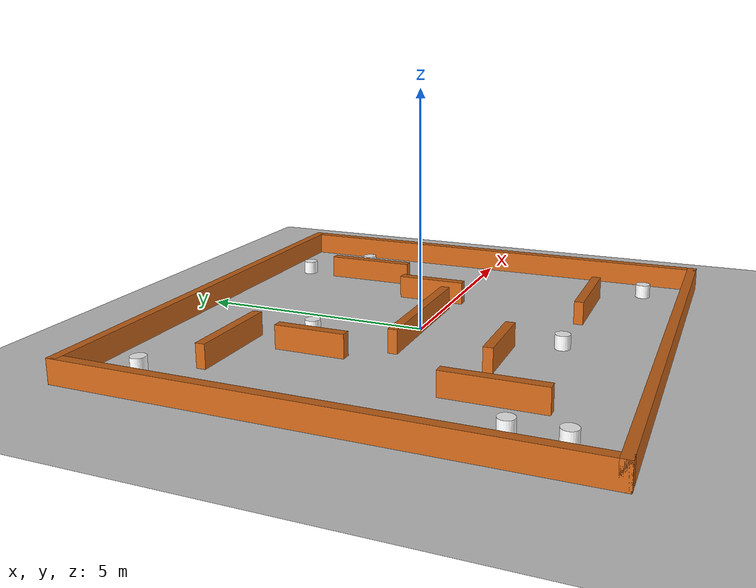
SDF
<?xml version="1.0"?>
<sdf version="1.6">
  <world name="dynamic_complex">

    <physics type="ode">
      <max_step_size>0.001</max_step_size>
      <real_time_factor>1</real_time_factor>
      <real_time_update_rate>1000</real_time_update_rate>
      <gravity>0 0 -9.8</gravity>
    </physics>

    <include><uri>model://ground_plane</uri></include>
    <include><uri>model://sun</uri></include>

    <!-- Outer walls (x, y = +-5) and internal walls -->

    <model name="wall_north">
      <static>true</static>
      <pose>0 5 0.25 0 0 0</pose>
      <link name="link">
        <collision name="collision"><geometry><box><size>10.2 0.2 0.5</size></box></geometry></collision>
        <visual name="visual"><geometry><box><size>10.2 0.2 0.5</size></box></geometry>
          <material><ambient>0.8 0.4 0.1 1</ambient><diffuse>0.8 0.4 0.1 1</diffuse></material>
        </visual>
      </link>
    </model>

    <model name="wall_south">
      <static>true</static>
      <pose>0 -5 0.25 0 0 0</pose>
      <link name="link">
        <collision name="collision"><geometry><box><size>10.2 0.2 0.5</size></box></geometry></collision>
        <visual name="visual"><geometry><box><size>10.2 0.2 0.5</size></box></geometry>
          <material><ambient>0.8 0.4 0.1 1</ambient><diffuse>0.8 0.4 0.1 1</diffuse></material>
        </visual>
      </link>
    </model>

    <model name="wall_east">
      <static>true</static>
      <pose>5 0 0.25 0 0 0</pose>
      <link name="link">
        <collision name="collision"><geometry><box><size>0.2 10.2 0.5</size></box></geometry></collision>
        <visual name="visual"><geometry><box><size>0.2 10.2 0.5</size></box></geometry>
          <material><ambient>0.8 0.4 0.1 1</ambient><diffuse>0.8 0.4 0.1 1</diffuse></material>
        </visual>
      </link>
    </model>

    <model name="wall_west">
      <static>true</static>
      <pose>-5 0 0.25 0 0 0</pose>
      <link name="link">
        <collision name="collision"><geometry><box><size>0.2 10.2 0.5</size></box></geometry></collision>
        <visual name="visual"><geometry><box><size>0.2 10.2 0.5</size></box></geometry>
          <material><ambient>0.8 0.4 0.1 1</ambient><diffuse>0.8 0.4 0.1 1</diffuse></material>
        </visual>
      </link>
    </model>

    <model name="internal_wall_1">
      <static>true</static>
      <pose>-2.5 3.0 0.25 0 0 0</pose>
      <link name="link">
        <collision name="collision"><geometry><box><size>2.0 0.2 0.5</size></box></geometry></collision>
        <visual name="visual"><geometry><box><size>2.0 0.2 0.5</size></box></geometry>
          <material><ambient>0.8 0.4 0.1 1</ambient><diffuse>0.8 0.4 0.1 1</diffuse></material>
        </visual>
      </link>
    </model>

    <model name="internal_wall_2">
      <static>true</static>
      <pose>3.0 2.5 0.25 0 0 0</pose>
      <link name="link">
        <collision name="collision"><geometry><box><size>0.2 2.0 0.5</size></box></geometry></collision>
        <visual name="visual"><geometry><box><size>0.2 2.0 0.5</size></box></geometry>
          <material><ambient>0.8 0.4 0.1 1</ambient><diffuse>0.8 0.4 0.1 1</diffuse></material>
        </visual>
      </link>
    </model>

    <model name="internal_wall_3">
      <static>true</static>
      <pose>0.0 0.0 0.25 0 0 0</pose>
      <link name="link">
        <collision name="collision"><geometry><box><size>3.0 0.2 0.5</size></box></geometry></collision>
        <visual name="visual"><geometry><box><size>3.0 0.2 0.5</size></box></geometry>
          <material><ambient>0.8 0.4 0.1 1</ambient><diffuse>0.8 0.4 0.1 1</diffuse></material>
        </visual>
      </link>
    </model>

    <model name="internal_wall_4">
      <static>true</static>
      <pose>-3.0 -2.5 0.25 0 0 0</pose>
      <link name="link">
        <collision name="collision"><geometry><box><size>0.2 2.0 0.5</size></box></geometry></collision>
        <visual name="visual"><geometry><box><size>0.2 2.0 0.5</size></box></geometry>
          <material><ambient>0.8 0.4 0.1 1</ambient><diffuse>0.8 0.4 0.1 1</diffuse></material>
        </visual>
      </link>
    </model>

    <model name="internal_wall_5">
      <static>true</static>
      <pose>2.5 -3.0 0.25 0 0 0</pose>
      <link name="link">
        <collision name="collision"><geometry><box><size>2.0 0.2 0.5</size></box></geometry></collision>
        <visual name="visual"><geometry><box><size>2.0 0.2 0.5</size></box></geometry>
          <material><ambient>0.8 0.4 0.1 1</ambient><diffuse>0.8 0.4 0.1 1</diffuse></material>
        </visual>
      </link>
    </model>

    <model name="internal_wall_6">
      <static>true</static>
      <pose>-1.0 -2.0 0.25 0 0 0</pose>
      <link name="link">
        <collision name="collision"><geometry><box><size>1.5 0.2 0.5</size></box></geometry></collision>
        <visual name="visual"><geometry><box><size>1.5 0.2 0.5</size></box></geometry>
          <material><ambient>0.8 0.4 0.1 1</ambient><diffuse>0.8 0.4 0.1 1</diffuse></material>
        </visual>
      </link>
    </model>

    <model name="internal_wall_7">
      <static>true</static>
      <pose>2.0 0.5 0.25 0 0 0</pose>
      <link name="link">
        <collision name="collision"><geometry><box><size>0.2 1.5 0.5</size></box></geometry></collision>
        <visual name="visual"><geometry><box><size>0.2 1.5 0.5</size></box></geometry>
          <material><ambient>0.8 0.4 0.1 1</ambient><diffuse>0.8 0.4 0.1 1</diffuse></material>
        </visual>
      </link>
    </model>

    <model name="internal_wall_8">
      <static>true</static>
      <pose>-2.0 1.5 0.25 0 0 0</pose>
      <link name="link">
        <collision name="collision"><geometry><box><size>0.2 1.5 0.5</size></box></geometry></collision>
        <visual name="visual"><geometry><box><size>0.2 1.5 0.5</size></box></geometry>
          <material><ambient>0.8 0.4 0.1 1</ambient><diffuse>0.8 0.4 0.1 1</diffuse></material>
        </visual>
      </link>
    </model>

    <!-- Patrolling obstacles (spawn poses are inside the arena) -->

    <!-- Obstacle 1: starts at (-4, 4), patrols to (2, 4) and back every 24 s -->
    <model name="dynamic_obstacle_1">
      <pose>-4.0 4.0 0.15 0 0 0</pose>
      <link name="link">
        <gravity>false</gravity>
        <kinematic>true</kinematic>
        <collision name="collision"><geometry><cylinder><radius>0.16</radius><length>0.3</length></cylinder></geometry></collision>
        <visual name="visual"><geometry><cylinder><radius>0.16</radius><length>0.3</length></cylinder></geometry>
          <material><ambient>1.0 1.0 1.0 1</ambient><diffuse>1.0 1.0 1.0 1</diffuse></material>
        </visual>
      </link>
      <plugin name="patrol" filename="libpatrol_obstacle.so">
        <offset>6.0 0.0 0</offset>
        <period>24.0</period>
      </plugin>
    </model>

    <!-- Obstacle 2: starts at (4, 3), patrols to (4, -3) and back every 28 s -->
    <model name="dynamic_obstacle_2">
      <pose>4.0 3.0 0.15 0 0 0</pose>
      <link name="link">
        <gravity>false</gravity>
        <kinematic>true</kinematic>
        <collision name="collision"><geometry><cylinder><radius>0.16</radius><length>0.3</length></cylinder></geometry></collision>
        <visual name="visual"><geometry><cylinder><radius>0.16</radius><length>0.3</length></cylinder></geometry>
          <material><ambient>1.0 1.0 1.0 1</ambient><diffuse>1.0 1.0 1.0 1</diffuse></material>
        </visual>
      </link>
      <plugin name="patrol" filename="libpatrol_obstacle.so">
        <offset>0.0 -6.0 0</offset>
        <period>28.0</period>
      </plugin>
    </model>

    <!-- Obstacle 3: starts at (-4, -4), patrols to (0, -4) and back every 20 s -->
    <model name="dynamic_obstacle_3">
      <pose>-4.0 -4.0 0.15 0 0 0</pose>
      <link name="link">
        <gravity>false</gravity>
        <kinematic>true</kinematic>
        <collision name="collision"><geometry><cylinder><radius>0.16</radius><length>0.3</length></cylinder></geometry></collision>
        <visual name="visual"><geometry><cylinder><radius>0.16</radius><length>0.3</length></cylinder></geometry>
          <material><ambient>1.0 1.0 1.0 1</ambient><diffuse>1.0 1.0 1.0 1</diffuse></material>
        </visual>
      </link>
      <plugin name="patrol" filename="libpatrol_obstacle.so">
        <offset>4.0 0.0 0</offset>
        <period>20.0</period>
      </plugin>
    </model>

    <!-- Obstacle 4: starts at (-4, -3), patrols to (-4, 3) and back every 26 s -->
    <model name="dynamic_obstacle_4">
      <pose>-4.0 -3.0 0.15 0 0 0</pose>
      <link name="link">
        <gravity>false</gravity>
        <kinematic>true</kinematic>
        <collision name="collision"><geometry><cylinder><radius>0.16</radius><length>0.3</length></cylinder></geometry></collision>
        <visual name="visual"><geometry><cylinder><radius>0.16</radius><length>0.3</length></cylinder></geometry>
          <material><ambient>1.0 1.0 1.0 1</ambient><diffuse>1.0 1.0 1.0 1</diffuse></material>
        </visual>
      </link>
      <plugin name="patrol" filename="libpatrol_obstacle.so">
        <offset>0.0 6.0 0</offset>
        <period>26.0</period>
      </plugin>
    </model>

    <!-- Obstacle 5: starts at (4, -4), patrols to (1, -4) and back every 22 s -->
    <model name="dynamic_obstacle_5">
      <pose>4.0 -4.0 0.15 0 0 0</pose>
      <link name="link">
        <gravity>false</gravity>
        <kinematic>true</kinematic>
        <collision name="collision"><geometry><cylinder><radius>0.16</radius><length>0.3</length></cylinder></geometry></collision>
        <visual name="visual"><geometry><cylinder><radius>0.16</radius><length>0.3</length></cylinder></geometry>
          <material><ambient>1.0 1.0 1.0 1</ambient><diffuse>1.0 1.0 1.0 1</diffuse></material>
        </visual>
      </link>
      <plugin name="patrol" filename="libpatrol_obstacle.so">
        <offset>-3.0 0.0 0</offset>
        <period>22.0</period>
      </plugin>
    </model>

    <!-- Obstacle 6: starts at (-1, 2), patrols to (2, 2) and back every 18 s -->
    <model name="dynamic_obstacle_6">
      <pose>-1.0 2.0 0.15 0 0 0</pose>
      <link name="link">
        <gravity>false</gravity>
        <kinematic>true</kinematic>
        <collision name="collision"><geometry><cylinder><radius>0.16</radius><length>0.3</length></cylinder></geometry></collision>
        <visual name="visual"><geometry><cylinder><radius>0.16</radius><length>0.3</length></cylinder></geometry>
          <material><ambient>1.0 1.0 1.0 1</ambient><diffuse>1.0 1.0 1.0 1</diffuse></material>
        </visual>
      </link>
      <plugin name="patrol" filename="libpatrol_obstacle.so">
        <offset>3.0 0.0 0</offset>
        <period>18.0</period>
      </plugin>
    </model>

    <!-- Obstacle 7: starts at (0, -3), patrols to (2, -1.5) and back every 16 s -->
    <model name="dynamic_obstacle_7">
      <pose>0.0 -3.0 0.15 0 0 0</pose>
      <link name="link">
        <gravity>false</gravity>
        <kinematic>true</kinematic>
        <collision name="collision"><geometry><cylinder><radius>0.16</radius><length>0.3</length></cylinder></geometry></collision>
        <visual name="visual"><geometry><cylinder><radius>0.16</radius><length>0.3</length></cylinder></geometry>
          <material><ambient>1.0 1.0 1.0 1</ambient><diffuse>1.0 1.0 1.0 1</diffuse></material>
        </visual>
      </link>
      <plugin name="patrol" filename="libpatrol_obstacle.so">
        <offset>2.0 1.5 0</offset>
        <period>16.0</period>
      </plugin>
    </model>

    <!-- Obstacle 8: starts at (3, 4.2), patrols to (0, 2.5) and back every 20 s -->
    <model name="dynamic_obstacle_8">
      <pose>3.0 4.2 0.15 0 0 0</pose>
      <link name="link">
        <gravity>false</gravity>
        <kinematic>true</kinematic>
        <collision name="collision"><geometry><cylinder><radius>0.16</radius><length>0.3</length></cylinder></geometry></collision>
        <visual name="visual"><geometry><cylinder><radius>0.16</radius><length>0.3</length></cylinder></geometry>
          <material><ambient>1.0 1.0 1.0 1</ambient><diffuse>1.0 1.0 1.0 1</diffuse></material>
        </visual>
      </link>
      <plugin name="patrol" filename="libpatrol_obstacle.so">
        <offset>-3.0 -1.7 0</offset>
        <period>20.0</period>
      </plugin>
    </model>

    <scene>
      <ambient>0.4 0.4 0.4 1</ambient>
      <background>0.7 0.7 0.7 1</background>
      <shadows>true</shadows>
    </scene>

    <gui fullscreen="0">
      <camera name="user_camera">
        <pose>0 0 15 0 1.57 1.57</pose>
        <view_controller>orbit</view_controller>
      </camera>
    </gui>

  </world>
</sdf>
